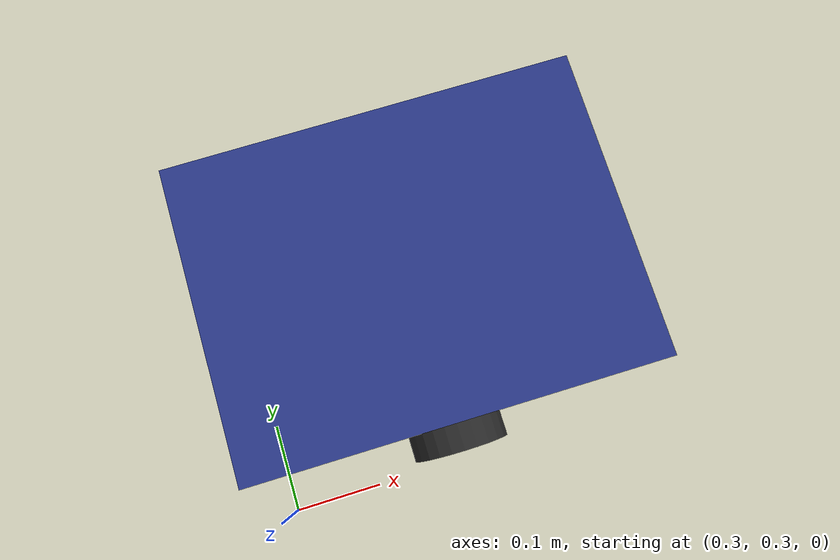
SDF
<?xml version="1.0"?>
<!-- Gazebo-side model for the pathfinder diff-drive car.
     Carries the DiffDrive plugin (cmd_vel -> wheel velocities).
     ROS-side TF/visualization is driven by urdf/car.urdf. -->
<sdf version="1.9">
  <model name="pathfinder_car">
    <!-- z = ground_top (0.05) + wheel_radius (0.05) - wheel_z_in_base (-0.045) = 0.145
         so the wheels rest cleanly on the 10x10x0.1 ground plane. -->
    <pose>0.5 0.5 0.145 0 0 0</pose>

    <link name="base_link">
      <inertial>
        <mass>2.0</mass>
        <inertia>
          <ixx>0.01875</ixx>
          <iyy>0.030416666666666668</iyy>
          <izz>0.041666666666666664</izz>
          <ixy>0</ixy>
          <ixz>0</ixz>
          <iyz>0</iyz>
        </inertia>
      </inertial>
      <visual name="base_visual">
        <geometry>
          <box>
            <size>0.40 0.30 0.15</size>
          </box>
        </geometry>
        <material>
          <ambient>0.1 0.15 0.4 1</ambient>
          <diffuse>0.15 0.2 0.5 1</diffuse>
          <specular>0.1 0.15 0.4 1</specular>
        </material>
      </visual>
      <collision name="base_collision">
        <geometry>
          <box>
            <size>0.40 0.30 0.15</size>
          </box>
        </geometry>
      </collision>

      <visual name="caster_visual">
        <pose>0.15 0 -0.07 0 0 0</pose>
        <geometry>
          <sphere>
            <radius>0.025</radius>
          </sphere>
        </geometry>
        <material>
          <ambient>0.15 0.15 0.15 1</ambient>
          <diffuse>0.15 0.15 0.15 1</diffuse>
        </material>
      </visual>
      <collision name="caster_collision">
        <pose>0.15 0 -0.07 0 0 0</pose>
        <geometry>
          <sphere>
            <radius>0.025</radius>
          </sphere>
        </geometry>
        <surface>
          <friction>
            <ode>
              <mu>0.0</mu>
              <mu2>0.0</mu2>
            </ode>
          </friction>
        </surface>
      </collision>
    </link>

    <link name="wheel_left">
      <pose>0 0.16 -0.045 0 0 0</pose>
      <inertial>
        <mass>0.1</mass>
        <inertia>
          <ixx>0.00012500000000000003</ixx>
          <iyy>7.583333333333335e-05</iyy>
          <izz>7.583333333333335e-05</izz>
          <ixy>0</ixy>
          <ixz>0</ixz>
          <iyz>0</iyz>
        </inertia>
      </inertial>
      <visual name="wheel_left_visual">
        <pose>0 0 0 1.5707963267948966 0 0</pose>
        <geometry>
          <cylinder>
            <radius>0.05</radius>
            <length>0.04</length>
          </cylinder>
        </geometry>
        <material>
          <ambient>0.15 0.15 0.15 1</ambient>
          <diffuse>0.15 0.15 0.15 1</diffuse>
        </material>
      </visual>
      <collision name="wheel_left_collision">
        <pose>0 0 0 1.5707963267948966 0 0</pose>
        <geometry>
          <cylinder>
            <radius>0.05</radius>
            <length>0.04</length>
          </cylinder>
        </geometry>
        <surface>
          <friction>
            <ode>
              <mu>1.2</mu>
              <mu2>1.2</mu2>
            </ode>
          </friction>
        </surface>
      </collision>
    </link>

    <link name="wheel_right">
      <pose>0 -0.16 -0.045 0 0 0</pose>
      <inertial>
        <mass>0.1</mass>
        <inertia>
          <ixx>0.00012500000000000003</ixx>
          <iyy>7.583333333333335e-05</iyy>
          <izz>7.583333333333335e-05</izz>
          <ixy>0</ixy>
          <ixz>0</ixz>
          <iyz>0</iyz>
        </inertia>
      </inertial>
      <visual name="wheel_right_visual">
        <pose>0 0 0 1.5707963267948966 0 0</pose>
        <geometry>
          <cylinder>
            <radius>0.05</radius>
            <length>0.04</length>
          </cylinder>
        </geometry>
        <material>
          <ambient>0.15 0.15 0.15 1</ambient>
          <diffuse>0.15 0.15 0.15 1</diffuse>
        </material>
      </visual>
      <collision name="wheel_right_collision">
        <pose>0 0 0 1.5707963267948966 0 0</pose>
        <geometry>
          <cylinder>
            <radius>0.05</radius>
            <length>0.04</length>
          </cylinder>
        </geometry>
        <surface>
          <friction>
            <ode>
              <mu>1.2</mu>
              <mu2>1.2</mu2>
            </ode>
          </friction>
        </surface>
      </collision>
    </link>

    <joint name="left_wheel_joint" type="revolute">
      <parent>base_link</parent>
      <child>wheel_left</child>
      <axis>
        <xyz>0 1 0</xyz>
        <limit>
          <lower>-1e16</lower>
          <upper>1e16</upper>
        </limit>
        <dynamics>
          <damping>0.005</damping>
        </dynamics>
      </axis>
    </joint>

    <joint name="right_wheel_joint" type="revolute">
      <parent>base_link</parent>
      <child>wheel_right</child>
      <axis>
        <xyz>0 1 0</xyz>
        <limit>
          <lower>-1e16</lower>
          <upper>1e16</upper>
        </limit>
        <dynamics>
          <damping>0.005</damping>
        </dynamics>
      </axis>
    </joint>

    <!-- cmd_vel (gz.msgs.Twist) -> wheel velocities. Topic remapped to /cmd_vel. -->
    <plugin filename="gz-sim-diff-drive-system"
            name="gz::sim::systems::DiffDrive">
      <left_joint>left_wheel_joint</left_joint>
      <right_joint>right_wheel_joint</right_joint>
      <wheel_separation>0.32</wheel_separation>
      <wheel_radius>0.05</wheel_radius>
      <topic>cmd_vel</topic>
      <max_linear_acceleration>2.0</max_linear_acceleration>
      <max_angular_acceleration>2.0</max_angular_acceleration>
      <max_linear_velocity>1.0</max_linear_velocity>
      <max_angular_velocity>2.0</max_angular_velocity>
    </plugin>

    <!-- Publish pose updates on /model/pathfinder_car/pose for the ROS bridge. -->
    <plugin filename="gz-sim-pose-publisher-system"
            name="gz::sim::systems::PosePublisher">
      <publish_link_pose>false</publish_link_pose>
      <publish_visual_pose>false</publish_visual_pose>
      <publish_collision_pose>false</publish_collision_pose>
      <publish_nested_model_pose>false</publish_nested_model_pose>
      <publish_model_pose>true</publish_model_pose>
      <update_frequency>50</update_frequency>
    </plugin>
  </model>
</sdf>
